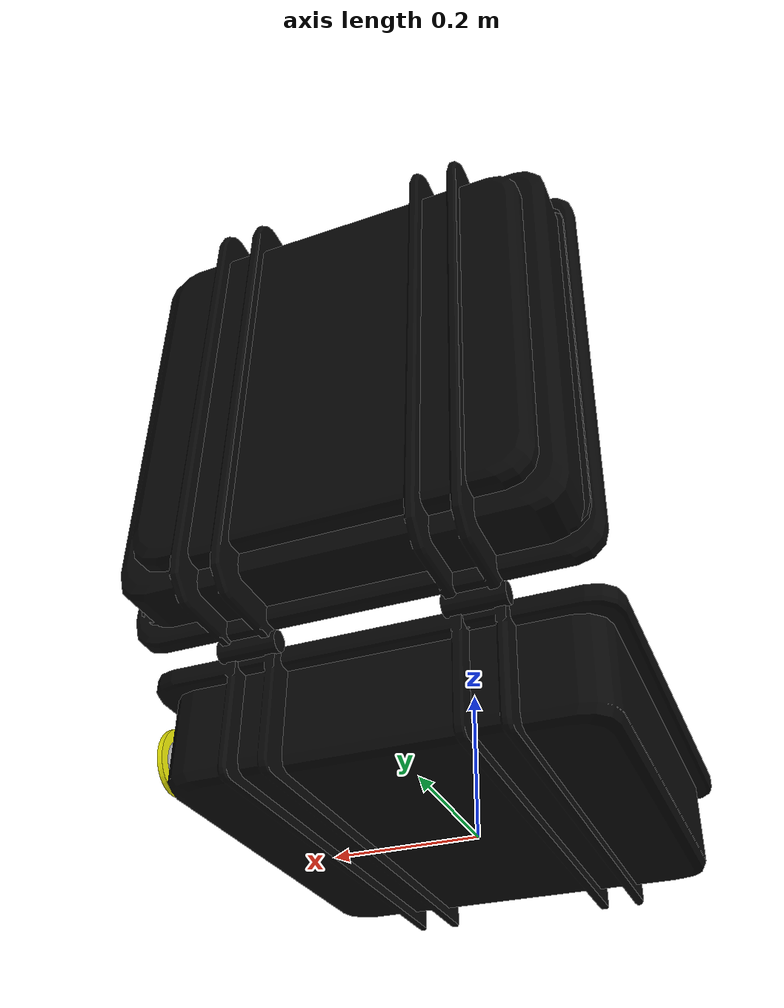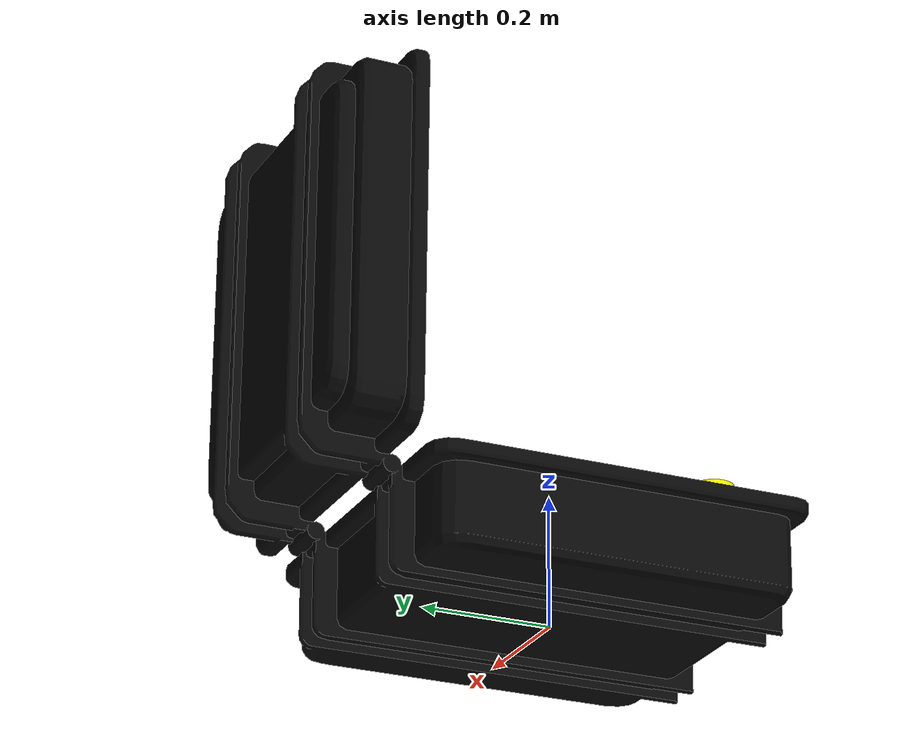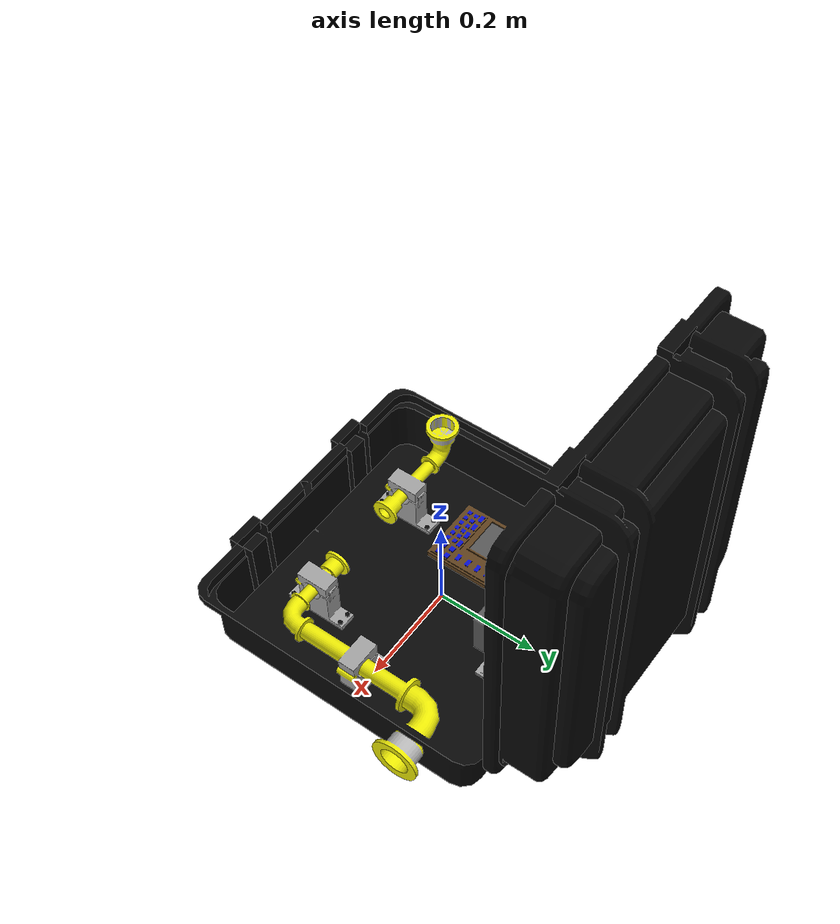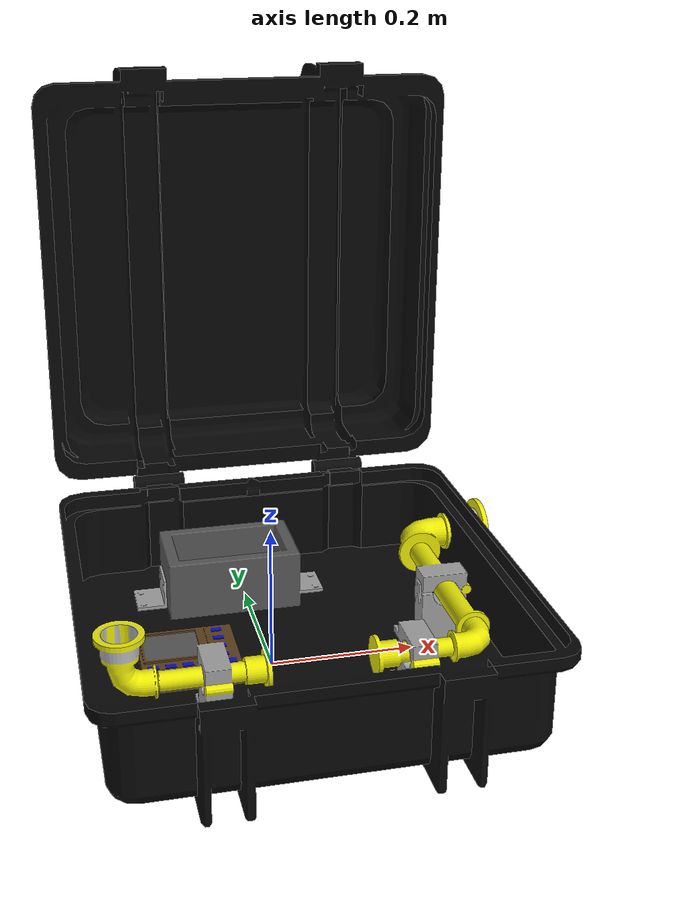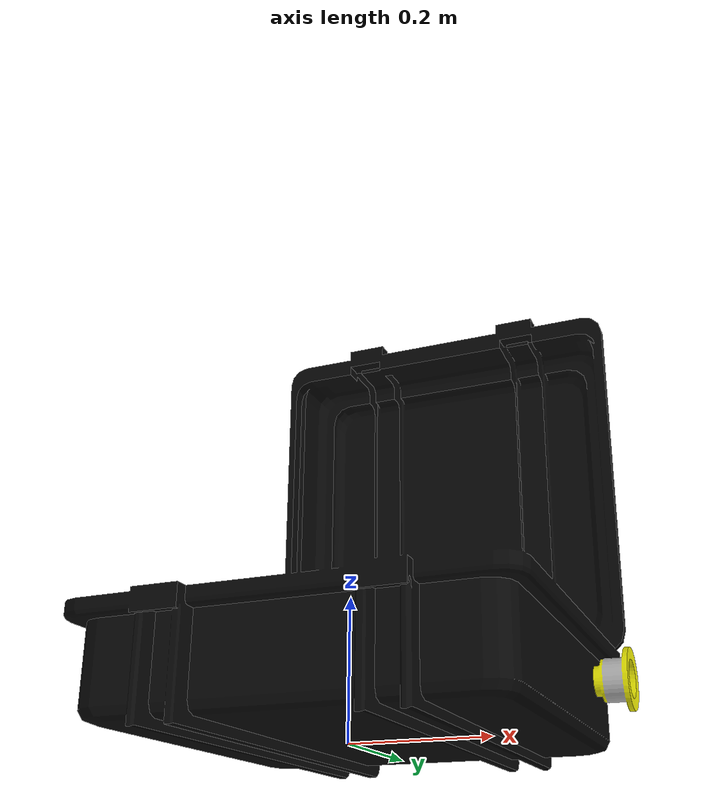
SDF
<?xml version="1.0" ?>
<sdf version="1.6">
  <model name="assembly_briefcase_ariac">
    <static>true</static>
    <link name="briefcase">
    <kinematic>0</kinematic>
            <inertial>
        <pose>0 0 0.01 0 0 0</pose>
        <mass>0.5</mass>
        <inertia>
          <ixx>0.0009</ixx>
          <ixy>0</ixy>
          <ixz>0</ixz>
          <iyy>0.0009</iyy>
          <iyz>0</iyz>
          <izz>0.0012</izz>
        </inertia>
      </inertial>
      <sensor name='briefcase_contact' type='contact'>
        <update_rate>1</update_rate>
        <contact>
          <collision>briefcase_collision</collision>
        </contact>
      </sensor>
      <collision name='briefcase_collision'>
        <pose frame=''>0 0 0 0 0 0</pose>
        <geometry>
            <mesh>
            <uri>model://assembly_briefcase_ariac/meshes/briefcase.dae</uri>
            <scale>1.1 1.1 1.1</scale>
            </mesh>
          </geometry>
        <surface>
          <contact>
            <ode>
              <max_vel>0.0</max_vel>
              <min_depth>0.001</min_depth>
            </ode>
          </contact>
        </surface>
      </collision>
      <visual name="briefcase_visual">
         <geometry>
           <mesh>
             <uri>model://assembly_briefcase_ariac/meshes/briefcase.dae</uri>
             <scale>1.1 1.1 1.1</scale>
           </mesh>
         </geometry>
       </visual>
    </link>
    <link name='assembly_surface_battery'>
      <pose frame=''>-0.032465 0.174845 0.06 0 0 0</pose>
      <collision name='battery_collision'>
	      <geometry>
		      <cylinder>
			      <length>0.003</length>
			      <radius>0.015</radius>
		      </cylinder>
	      </geometry>
      </collision>
    </link>
    <link name='assembly_surface_pump'>
      <pose frame=''>0.032085 -0.152835 0.02 0 0 0</pose>
      <collision name='pump_collision'>
	      <geometry>
		      <cylinder>
			      <length>0.003</length>
			      <radius>0.015</radius>
		      </cylinder>
	      </geometry>
      </collision>
    </link>
    <link name='assembly_surface_sensor'>
      <pose frame=''>0.320000 0.165000 0.09 0 1.578 0</pose>
      <collision name='sensor_collision'>
	      <geometry>
		      <cylinder>
			      <length>0.002</length>
			      <radius>0.01</radius>
		      </cylinder>
	      </geometry>
      </collision>
    </link>
    <link name='assembly_surface_regulator'>
      <pose frame=''>-0.217000 -0.153200 0.14 0 0 0</pose>
      <collision name='regulator_collision'>
	      <geometry>
		      <cylinder>
			      <length>0.002</length>
			      <radius>0.01</radius>
		      </cylinder>
	      </geometry>
      </collision>
    </link>
    <plugin name="assembly_battery" filename="libAssemblyPlugin.so">
	    <contact_check>
		    <attach_steps>1</attach_steps>
		    <alignment_threshold>0.95</alignment_threshold>
		    <min_contact_count>1</min_contact_count>
	    </contact_check>
	    <grippable_model_types>
		    <type>assembly_battery_red</type>
		    <type>assembly_battery_green</type>
		    <type>assembly_battery_blue</type>
	    </grippable_model_types>
	    <assembly_surface_link>assembly_surface_battery</assembly_surface_link>
    </plugin>
    <plugin name="assembly_pump" filename="libAssemblyPlugin.so">
	    <contact_check>
		    <alignment_threshold>0.95</alignment_threshold>
		    <attach_steps>1</attach_steps>
		    <min_contact_count>1</min_contact_count>
	    </contact_check>
	    <grippable_model_types>
		    <type>assembly_pump_red</type>
		    <type>assembly_pump_green</type>
		    <type>assembly_pump_blue</type>
	    </grippable_model_types>
	    <assembly_surface_link>assembly_surface_pump</assembly_surface_link>
    </plugin>
    <plugin name="assembly_regulator" filename="libAssemblyPlugin.so">
	    <contact_check>
		    <alignment_threshold>0.95</alignment_threshold>
		    <attach_steps>1</attach_steps>
		    <min_contact_count>1</min_contact_count>
	    </contact_check>
	    <grippable_model_types>
		    <type>assembly_regulator_red</type>
		    <type>assembly_regulator_green</type>
		    <type>assembly_regulator_blue</type>
	    </grippable_model_types>
	    <assembly_surface_link>assembly_surface_regulator</assembly_surface_link>
    </plugin>
    <plugin name="assembly_sensor" filename="libAssemblyPlugin.so">
	    <contact_check>
		    <alignment_threshold>0.95</alignment_threshold>
		    <attach_steps>1</attach_steps>
		    <min_contact_count>1</min_contact_count>
	    </contact_check>
	    <grippable_model_types>
		    <type>assembly_sensor_red</type>
		    <type>assembly_sensor_green</type>
		    <type>assembly_sensor_blue</type>
	    </grippable_model_types>
	    <assembly_surface_link>assembly_surface_sensor</assembly_surface_link>
    </plugin>
  </model>
</sdf>
